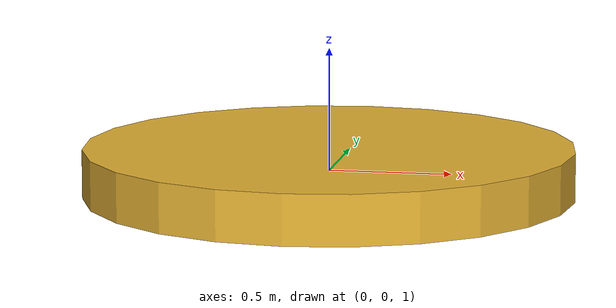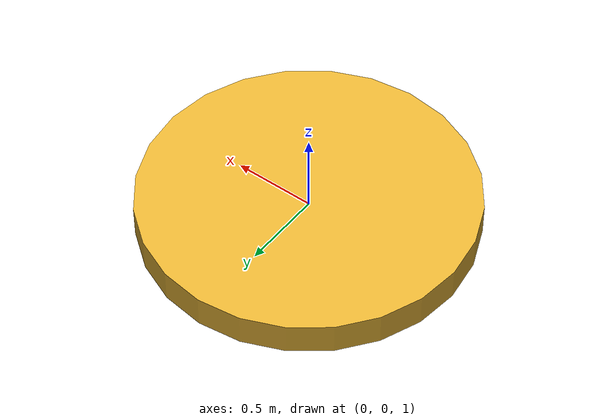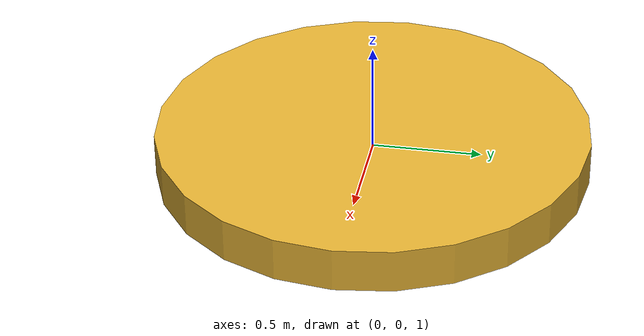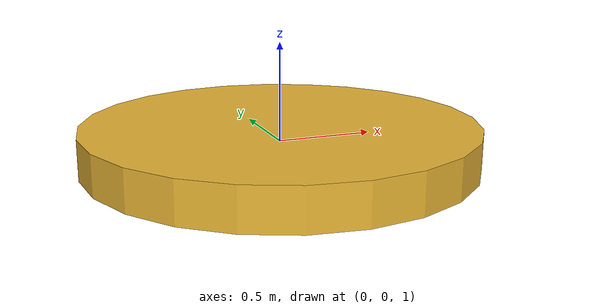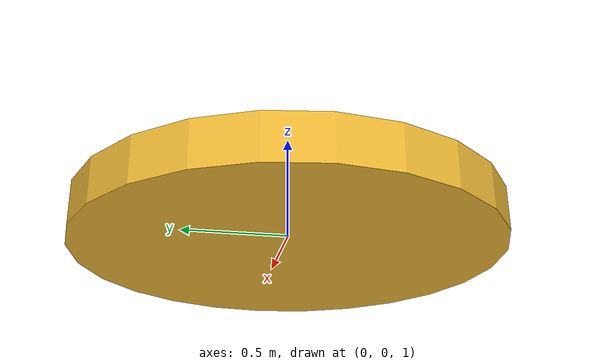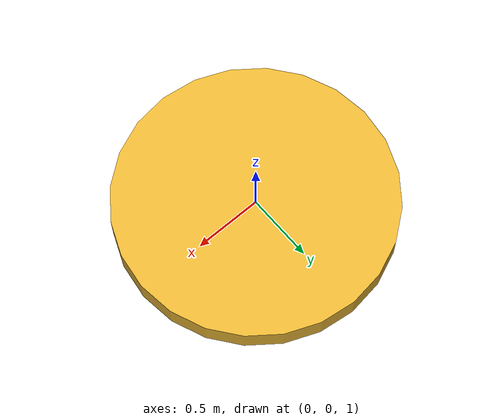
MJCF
<mujoco>
  <option gravity="0 0 -9.81"/>
  <worldbody>
    <body name="support" pos="0 0 1">
      <geom type="cylinder" size="0.2 0.05" rgba="0.5 0.5 0.5 1"/>
    </body>
    <body name="surface" pos="-10 0 -10">
      <geom type="plane" size="25 25 0.1" rgba="0.7 0.7 0.7 1" friction="1 1 1"/>
    </body>
    <body name="disc" pos="0 0 1">
      <geom type="cylinder" size="1 0.1" density="1" rgba="0.9 0.7 0.2 1"/>
      <joint name="disc_joint" type="free"/>
    </body>
  </worldbody>
</mujoco>
